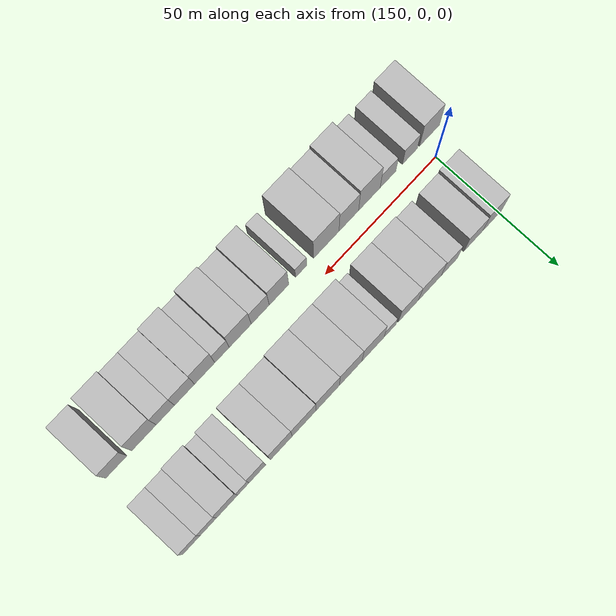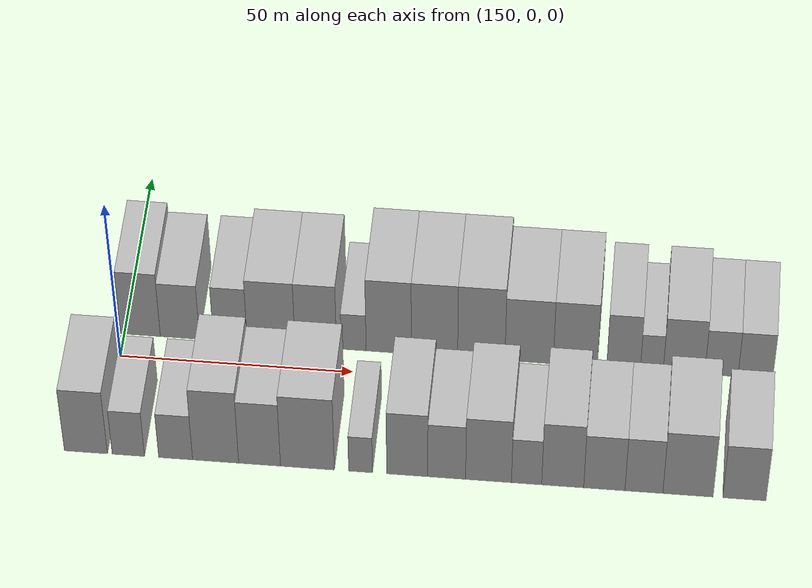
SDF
<sdf version="1.6">
 <world name="default">
  <model name="building_15">
   <static>1</static>
   <pose>153.4222 16.0000 0 0.000000 0.000000 1.570796</pose>
   <link name="link">
    <pose>0 0 10.50 0 0 0</pose>
    <collision name="collision"><geometry><box><size>20.0000 8.6431 21.0000</size></box></geometry></collision>
    <visual name="visual">
     <cast_shadows>0</cast_shadows>
     <geometry><box><size>20.0000 8.6431 21.0000</size></box></geometry>
     <material>
      <script>
       <uri>model://HANNAS_wall/materials/scripts</uri>
       <uri>model://HANNAS_wall/materials/textures</uri>
       <name>vrc/HANNAS_wall</name>
      </script>
     </material>
    </visual>
   </link>
  </model>
  <model name="building_16">
   <static>1</static>
   <pose>161.9941 16.0000 0 0.000000 0.000000 1.570796</pose>
   <link name="link">
    <pose>0 0 9.00 0 0 0</pose>
    <collision name="collision"><geometry><box><size>20.0000 8.5007 18.0000</size></box></geometry></collision>
    <visual name="visual">
     <cast_shadows>0</cast_shadows>
     <geometry><box><size>20.0000 8.5007 18.0000</size></box></geometry>
     <material>
      <script>
       <uri>model://HANNAS_wall/materials/scripts</uri>
       <uri>model://HANNAS_wall/materials/textures</uri>
       <name>vrc/HANNAS_wall</name>
      </script>
     </material>
    </visual>
   </link>
  </model>
  <model name="building_17">
   <static>1</static>
   <pose>172.9062 16.0000 0 0.000000 0.000000 1.570796</pose>
   <link name="link">
    <pose>0 0 9.00 0 0 0</pose>
    <collision name="collision"><geometry><box><size>20.0000 7.3235 18.0000</size></box></geometry></collision>
    <visual name="visual">
     <cast_shadows>0</cast_shadows>
     <geometry><box><size>20.0000 7.3235 18.0000</size></box></geometry>
     <material>
      <script>
       <uri>model://HANNAS_wall/materials/scripts</uri>
       <uri>model://HANNAS_wall/materials/textures</uri>
       <name>vrc/HANNAS_wall</name>
      </script>
     </material>
    </visual>
   </link>
  </model>
  <model name="building_18">
   <static>1</static>
   <pose>181.7380 16.0000 0 0.000000 0.000000 1.570796</pose>
   <link name="link">
    <pose>0 0 10.50 0 0 0</pose>
    <collision name="collision"><geometry><box><size>20.0000 10.3401 21.0000</size></box></geometry></collision>
    <visual name="visual">
     <cast_shadows>0</cast_shadows>
     <geometry><box><size>20.0000 10.3401 21.0000</size></box></geometry>
     <material>
      <script>
       <uri>model://HANNAS_wall/materials/scripts</uri>
       <uri>model://HANNAS_wall/materials/textures</uri>
       <name>vrc/HANNAS_wall</name>
      </script>
     </material>
    </visual>
   </link>
  </model>
  <model name="building_19">
   <static>1</static>
   <pose>191.3927 16.0000 0 0.000000 0.000000 1.570796</pose>
   <link name="link">
    <pose>0 0 10.50 0 0 0</pose>
    <collision name="collision"><geometry><box><size>20.0000 8.9692 21.0000</size></box></geometry></collision>
    <visual name="visual">
     <cast_shadows>0</cast_shadows>
     <geometry><box><size>20.0000 8.9692 21.0000</size></box></geometry>
     <material>
      <script>
       <uri>model://HANNAS_wall/materials/scripts</uri>
       <uri>model://HANNAS_wall/materials/textures</uri>
       <name>vrc/HANNAS_wall</name>
      </script>
     </material>
    </visual>
   </link>
  </model>
  <model name="building_20">
   <static>1</static>
   <pose>199.5718 16.0000 0 0.000000 0.000000 1.570796</pose>
   <link name="link">
    <pose>0 0 6.00 0 0 0</pose>
    <collision name="collision"><geometry><box><size>20.0000 5.3890 12.0000</size></box></geometry></collision>
    <visual name="visual">
     <cast_shadows>0</cast_shadows>
     <geometry><box><size>20.0000 5.3890 12.0000</size></box></geometry>
     <material>
      <script>
       <uri>model://HANNAS_wall/materials/scripts</uri>
       <uri>model://HANNAS_wall/materials/textures</uri>
       <name>vrc/HANNAS_wall</name>
      </script>
     </material>
    </visual>
   </link>
  </model>
  <model name="building_21">
   <static>1</static>
   <pose>207.1382 16.0000 0 0.000000 0.000000 1.570796</pose>
   <link name="link">
    <pose>0 0 12.00 0 0 0</pose>
    <collision name="collision"><geometry><box><size>20.0000 9.7437 24.0000</size></box></geometry></collision>
    <visual name="visual">
     <cast_shadows>0</cast_shadows>
     <geometry><box><size>20.0000 9.7437 24.0000</size></box></geometry>
     <material>
      <script>
       <uri>model://HANNAS_wall/materials/scripts</uri>
       <uri>model://HANNAS_wall/materials/textures</uri>
       <name>vrc/HANNAS_wall</name>
      </script>
     </material>
    </visual>
   </link>
  </model>
  <model name="building_22">
   <static>1</static>
   <pose>216.9790 16.0000 0 0.000000 0.000000 1.570796</pose>
   <link name="link">
    <pose>0 0 12.00 0 0 0</pose>
    <collision name="collision"><geometry><box><size>20.0000 9.9380 24.0000</size></box></geometry></collision>
    <visual name="visual">
     <cast_shadows>0</cast_shadows>
     <geometry><box><size>20.0000 9.9380 24.0000</size></box></geometry>
     <material>
      <script>
       <uri>model://HANNAS_wall/materials/scripts</uri>
       <uri>model://HANNAS_wall/materials/textures</uri>
       <name>vrc/HANNAS_wall</name>
      </script>
     </material>
    </visual>
   </link>
  </model>
  <model name="building_23">
   <static>1</static>
   <pose>227.0366 16.0000 0 0.000000 0.000000 1.570796</pose>
   <link name="link">
    <pose>0 0 12.00 0 0 0</pose>
    <collision name="collision"><geometry><box><size>20.0000 10.1770 24.0000</size></box></geometry></collision>
    <visual name="visual">
     <cast_shadows>0</cast_shadows>
     <geometry><box><size>20.0000 10.1770 24.0000</size></box></geometry>
     <material>
      <script>
       <uri>model://HANNAS_wall/materials/scripts</uri>
       <uri>model://HANNAS_wall/materials/textures</uri>
       <name>vrc/HANNAS_wall</name>
      </script>
     </material>
    </visual>
   </link>
  </model>
  <model name="building_24">
   <static>1</static>
   <pose>237.3103 16.0000 0 0.000000 0.000000 1.570796</pose>
   <link name="link">
    <pose>0 0 10.50 0 0 0</pose>
    <collision name="collision"><geometry><box><size>20.0000 10.3703 21.0000</size></box></geometry></collision>
    <visual name="visual">
     <cast_shadows>0</cast_shadows>
     <geometry><box><size>20.0000 10.3703 21.0000</size></box></geometry>
     <material>
      <script>
       <uri>model://HANNAS_wall/materials/scripts</uri>
       <uri>model://HANNAS_wall/materials/textures</uri>
       <name>vrc/HANNAS_wall</name>
      </script>
     </material>
    </visual>
   </link>
  </model>
  <model name="building_25">
   <static>1</static>
   <pose>247.2131 16.0000 0 0.000000 0.000000 1.570796</pose>
   <link name="link">
    <pose>0 0 10.50 0 0 0</pose>
    <collision name="collision"><geometry><box><size>20.0000 9.4353 21.0000</size></box></geometry></collision>
    <visual name="visual">
     <cast_shadows>0</cast_shadows>
     <geometry><box><size>20.0000 9.4353 21.0000</size></box></geometry>
     <material>
      <script>
       <uri>model://HANNAS_wall/materials/scripts</uri>
       <uri>model://HANNAS_wall/materials/textures</uri>
       <name>vrc/HANNAS_wall</name>
      </script>
     </material>
    </visual>
   </link>
  </model>
  <model name="building_26">
   <static>1</static>
   <pose>257.5350 16.0000 0 0.000000 0.000000 1.570796</pose>
   <link name="link">
    <pose>0 0 9.00 0 0 0</pose>
    <collision name="collision"><geometry><box><size>20.0000 7.2085 18.0000</size></box></geometry></collision>
    <visual name="visual">
     <cast_shadows>0</cast_shadows>
     <geometry><box><size>20.0000 7.2085 18.0000</size></box></geometry>
     <material>
      <script>
       <uri>model://HANNAS_wall/materials/scripts</uri>
       <uri>model://HANNAS_wall/materials/textures</uri>
       <name>vrc/HANNAS_wall</name>
      </script>
     </material>
    </visual>
   </link>
  </model>
  <model name="building_27">
   <static>1</static>
   <pose>263.5808 16.0000 0 0.000000 0.000000 1.570796</pose>
   <link name="link">
    <pose>0 0 6.00 0 0 0</pose>
    <collision name="collision"><geometry><box><size>20.0000 4.8830 12.0000</size></box></geometry></collision>
    <visual name="visual">
     <cast_shadows>0</cast_shadows>
     <geometry><box><size>20.0000 4.8830 12.0000</size></box></geometry>
     <material>
      <script>
       <uri>model://HANNAS_wall/materials/scripts</uri>
       <uri>model://HANNAS_wall/materials/textures</uri>
       <name>vrc/HANNAS_wall</name>
      </script>
     </material>
    </visual>
   </link>
  </model>
  <model name="building_28">
   <static>1</static>
   <pose>270.4634 16.0000 0 0.000000 0.000000 1.570796</pose>
   <link name="link">
    <pose>0 0 9.00 0 0 0</pose>
    <collision name="collision"><geometry><box><size>20.0000 8.8822 18.0000</size></box></geometry></collision>
    <visual name="visual">
     <cast_shadows>0</cast_shadows>
     <geometry><box><size>20.0000 8.8822 18.0000</size></box></geometry>
     <material>
      <script>
       <uri>model://HANNAS_wall/materials/scripts</uri>
       <uri>model://HANNAS_wall/materials/textures</uri>
       <name>vrc/HANNAS_wall</name>
      </script>
     </material>
    </visual>
   </link>
  </model>
  <model name="building_29">
   <static>1</static>
   <pose>278.4469 16.0000 0 0.000000 0.000000 1.570796</pose>
   <link name="link">
    <pose>0 0 7.50 0 0 0</pose>
    <collision name="collision"><geometry><box><size>20.0000 7.0848 15.0000</size></box></geometry></collision>
    <visual name="visual">
     <cast_shadows>0</cast_shadows>
     <geometry><box><size>20.0000 7.0848 15.0000</size></box></geometry>
     <material>
      <script>
       <uri>model://HANNAS_wall/materials/scripts</uri>
       <uri>model://HANNAS_wall/materials/textures</uri>
       <name>vrc/HANNAS_wall</name>
      </script>
     </material>
    </visual>
   </link>
  </model>
  <model name="building_30">
   <static>1</static>
   <pose>285.6913 16.0000 0 0.000000 0.000000 1.570796</pose>
   <link name="link">
    <pose>0 0 7.50 0 0 0</pose>
    <collision name="collision"><geometry><box><size>20.0000 7.4039 15.0000</size></box></geometry></collision>
    <visual name="visual">
     <cast_shadows>0</cast_shadows>
     <geometry><box><size>20.0000 7.4039 15.0000</size></box></geometry>
     <material>
      <script>
       <uri>model://HANNAS_wall/materials/scripts</uri>
       <uri>model://HANNAS_wall/materials/textures</uri>
       <name>vrc/HANNAS_wall</name>
      </script>
     </material>
    </visual>
   </link>
  </model>
  <model name="building_47">
   <static>1</static>
   <pose>146.3144 -16.0000 0 0.000000 0.000000 1.570796</pose>
   <link name="link">
    <pose>0 0 10.50 0 0 0</pose>
    <collision name="collision"><geometry><box><size>20.0000 9.1134 21.0000</size></box></geometry></collision>
    <visual name="visual">
     <cast_shadows>0</cast_shadows>
     <geometry><box><size>20.0000 9.1134 21.0000</size></box></geometry>
     <material>
      <script>
       <uri>model://HANNAS_wall/materials/scripts</uri>
       <uri>model://HANNAS_wall/materials/textures</uri>
       <name>vrc/HANNAS_wall</name>
      </script>
     </material>
    </visual>
   </link>
  </model>
  <model name="building_48">
   <static>1</static>
   <pose>155.2886 -16.0000 0 0.000000 0.000000 1.570796</pose>
   <link name="link">
    <pose>0 0 7.50 0 0 0</pose>
    <collision name="collision"><geometry><box><size>20.0000 6.8350 15.0000</size></box></geometry></collision>
    <visual name="visual">
     <cast_shadows>0</cast_shadows>
     <geometry><box><size>20.0000 6.8350 15.0000</size></box></geometry>
     <material>
      <script>
       <uri>model://HANNAS_wall/materials/scripts</uri>
       <uri>model://HANNAS_wall/materials/textures</uri>
       <name>vrc/HANNAS_wall</name>
      </script>
     </material>
    </visual>
   </link>
  </model>
  <model name="building_49">
   <static>1</static>
   <pose>165.2825 -16.0000 0 0.000000 0.000000 1.570796</pose>
   <link name="link">
    <pose>0 0 7.50 0 0 0</pose>
    <collision name="collision"><geometry><box><size>20.0000 7.1528 15.0000</size></box></geometry></collision>
    <visual name="visual">
     <cast_shadows>0</cast_shadows>
     <geometry><box><size>20.0000 7.1528 15.0000</size></box></geometry>
     <material>
      <script>
       <uri>model://HANNAS_wall/materials/scripts</uri>
       <uri>model://HANNAS_wall/materials/textures</uri>
       <name>vrc/HANNAS_wall</name>
      </script>
     </material>
    </visual>
   </link>
  </model>
  <model name="building_50">
   <static>1</static>
   <pose>173.7167 -16.0000 0 0.000000 0.000000 1.570796</pose>
   <link name="link">
    <pose>0 0 12.00 0 0 0</pose>
    <collision name="collision"><geometry><box><size>20.0000 9.7155 24.0000</size></box></geometry></collision>
    <visual name="visual">
     <cast_shadows>0</cast_shadows>
     <geometry><box><size>20.0000 9.7155 24.0000</size></box></geometry>
     <material>
      <script>
       <uri>model://HANNAS_wall/materials/scripts</uri>
       <uri>model://HANNAS_wall/materials/textures</uri>
       <name>vrc/HANNAS_wall</name>
      </script>
     </material>
    </visual>
   </link>
  </model>
  <model name="building_51">
   <static>1</static>
   <pose>182.9810 -16.0000 0 0.000000 0.000000 1.570796</pose>
   <link name="link">
    <pose>0 0 10.50 0 0 0</pose>
    <collision name="collision"><geometry><box><size>20.0000 8.8132 21.0000</size></box></geometry></collision>
    <visual name="visual">
     <cast_shadows>0</cast_shadows>
     <geometry><box><size>20.0000 8.8132 21.0000</size></box></geometry>
     <material>
      <script>
       <uri>model://HANNAS_wall/materials/scripts</uri>
       <uri>model://HANNAS_wall/materials/textures</uri>
       <name>vrc/HANNAS_wall</name>
      </script>
     </material>
    </visual>
   </link>
  </model>
  <model name="building_52">
   <static>1</static>
   <pose>193.0665 -16.0000 0 0.000000 0.000000 1.570796</pose>
   <link name="link">
    <pose>0 0 12.00 0 0 0</pose>
    <collision name="collision"><geometry><box><size>20.0000 11.3579 24.0000</size></box></geometry></collision>
    <visual name="visual">
     <cast_shadows>0</cast_shadows>
     <geometry><box><size>20.0000 11.3579 24.0000</size></box></geometry>
     <material>
      <script>
       <uri>model://HANNAS_wall/materials/scripts</uri>
       <uri>model://HANNAS_wall/materials/textures</uri>
       <name>vrc/HANNAS_wall</name>
      </script>
     </material>
    </visual>
   </link>
  </model>
  <model name="building_53">
   <static>1</static>
   <pose>204.2439 -16.0000 0 0.000000 0.000000 1.570796</pose>
   <link name="link">
    <pose>0 0 6.00 0 0 0</pose>
    <collision name="collision"><geometry><box><size>20.0000 4.9968 12.0000</size></box></geometry></collision>
    <visual name="visual">
     <cast_shadows>0</cast_shadows>
     <geometry><box><size>20.0000 4.9968 12.0000</size></box></geometry>
     <material>
      <script>
       <uri>model://HANNAS_wall/materials/scripts</uri>
       <uri>model://HANNAS_wall/materials/textures</uri>
       <name>vrc/HANNAS_wall</name>
      </script>
     </material>
    </visual>
   </link>
  </model>
  <model name="building_54">
   <static>1</static>
   <pose>214.0443 -16.0000 0 0.000000 0.000000 1.570796</pose>
   <link name="link">
    <pose>0 0 10.50 0 0 0</pose>
    <collision name="collision"><geometry><box><size>20.0000 8.6040 21.0000</size></box></geometry></collision>
    <visual name="visual">
     <cast_shadows>0</cast_shadows>
     <geometry><box><size>20.0000 8.6040 21.0000</size></box></geometry>
     <material>
      <script>
       <uri>model://HANNAS_wall/materials/scripts</uri>
       <uri>model://HANNAS_wall/materials/textures</uri>
       <name>vrc/HANNAS_wall</name>
      </script>
     </material>
    </visual>
   </link>
  </model>
  <model name="building_55">
   <static>1</static>
   <pose>222.3034 -16.0000 0 0.000000 0.000000 1.570796</pose>
   <link name="link">
    <pose>0 0 9.00 0 0 0</pose>
    <collision name="collision"><geometry><box><size>20.0000 7.9143 18.0000</size></box></geometry></collision>
    <visual name="visual">
     <cast_shadows>0</cast_shadows>
     <geometry><box><size>20.0000 7.9143 18.0000</size></box></geometry>
     <material>
      <script>
       <uri>model://HANNAS_wall/materials/scripts</uri>
       <uri>model://HANNAS_wall/materials/textures</uri>
       <name>vrc/HANNAS_wall</name>
      </script>
     </material>
    </visual>
   </link>
  </model>
  <model name="building_56">
   <static>1</static>
   <pose>231.0617 -16.0000 0 0.000000 0.000000 1.570796</pose>
   <link name="link">
    <pose>0 0 10.50 0 0 0</pose>
    <collision name="collision"><geometry><box><size>20.0000 9.6022 21.0000</size></box></geometry></collision>
    <visual name="visual">
     <cast_shadows>0</cast_shadows>
     <geometry><box><size>20.0000 9.6022 21.0000</size></box></geometry>
     <material>
      <script>
       <uri>model://HANNAS_wall/materials/scripts</uri>
       <uri>model://HANNAS_wall/materials/textures</uri>
       <name>vrc/HANNAS_wall</name>
      </script>
     </material>
    </visual>
   </link>
  </model>
  <model name="building_57">
   <static>1</static>
   <pose>239.0195 -16.0000 0 0.000000 0.000000 1.570796</pose>
   <link name="link">
    <pose>0 0 7.50 0 0 0</pose>
    <collision name="collision"><geometry><box><size>20.0000 6.3135 15.0000</size></box></geometry></collision>
    <visual name="visual">
     <cast_shadows>0</cast_shadows>
     <geometry><box><size>20.0000 6.3135 15.0000</size></box></geometry>
     <material>
      <script>
       <uri>model://HANNAS_wall/materials/scripts</uri>
       <uri>model://HANNAS_wall/materials/textures</uri>
       <name>vrc/HANNAS_wall</name>
      </script>
     </material>
    </visual>
   </link>
  </model>
  <model name="building_58">
   <static>1</static>
   <pose>246.5631 -16.0000 0 0.000000 0.000000 1.570796</pose>
   <link name="link">
    <pose>0 0 10.50 0 0 0</pose>
    <collision name="collision"><geometry><box><size>20.0000 8.7736 21.0000</size></box></geometry></collision>
    <visual name="visual">
     <cast_shadows>0</cast_shadows>
     <geometry><box><size>20.0000 8.7736 21.0000</size></box></geometry>
     <material>
      <script>
       <uri>model://HANNAS_wall/materials/scripts</uri>
       <uri>model://HANNAS_wall/materials/textures</uri>
       <name>vrc/HANNAS_wall</name>
      </script>
     </material>
    </visual>
   </link>
  </model>
  <model name="building_59">
   <static>1</static>
   <pose>255.2510 -16.0000 0 0.000000 0.000000 1.570796</pose>
   <link name="link">
    <pose>0 0 9.00 0 0 0</pose>
    <collision name="collision"><geometry><box><size>20.0000 8.6021 18.0000</size></box></geometry></collision>
    <visual name="visual">
     <cast_shadows>0</cast_shadows>
     <geometry><box><size>20.0000 8.6021 18.0000</size></box></geometry>
     <material>
      <script>
       <uri>model://HANNAS_wall/materials/scripts</uri>
       <uri>model://HANNAS_wall/materials/textures</uri>
       <name>vrc/HANNAS_wall</name>
      </script>
     </material>
    </visual>
   </link>
  </model>
  <model name="building_60">
   <static>1</static>
   <pose>263.4978 -16.0000 0 0.000000 0.000000 1.570796</pose>
   <link name="link">
    <pose>0 0 9.00 0 0 0</pose>
    <collision name="collision"><geometry><box><size>20.0000 7.8916 18.0000</size></box></geometry></collision>
    <visual name="visual">
     <cast_shadows>0</cast_shadows>
     <geometry><box><size>20.0000 7.8916 18.0000</size></box></geometry>
     <material>
      <script>
       <uri>model://HANNAS_wall/materials/scripts</uri>
       <uri>model://HANNAS_wall/materials/textures</uri>
       <name>vrc/HANNAS_wall</name>
      </script>
     </material>
    </visual>
   </link>
  </model>
  <model name="building_61">
   <static>1</static>
   <pose>272.6704 -16.0000 0 0.000000 0.000000 1.570796</pose>
   <link name="link">
    <pose>0 0 10.50 0 0 0</pose>
    <collision name="collision"><geometry><box><size>20.0000 10.4536 21.0000</size></box></geometry></collision>
    <visual name="visual">
     <cast_shadows>0</cast_shadows>
     <geometry><box><size>20.0000 10.4536 21.0000</size></box></geometry>
     <material>
      <script>
       <uri>model://HANNAS_wall/materials/scripts</uri>
       <uri>model://HANNAS_wall/materials/textures</uri>
       <name>vrc/HANNAS_wall</name>
      </script>
     </material>
    </visual>
   </link>
  </model>
  <model name="building_62">
   <static>1</static>
   <pose>284.3865 -16.0000 0 0.000000 0.000000 1.570796</pose>
   <link name="link">
    <pose>0 0 9.00 0 0 0</pose>
    <collision name="collision"><geometry><box><size>20.0000 8.9787 18.0000</size></box></geometry></collision>
    <visual name="visual">
     <cast_shadows>0</cast_shadows>
     <geometry><box><size>20.0000 8.9787 18.0000</size></box></geometry>
     <material>
      <script>
       <uri>model://HANNAS_wall/materials/scripts</uri>
       <uri>model://HANNAS_wall/materials/textures</uri>
       <name>vrc/HANNAS_wall</name>
      </script>
     </material>
    </visual>
   </link>
  </model>
 </world>
</sdf>
